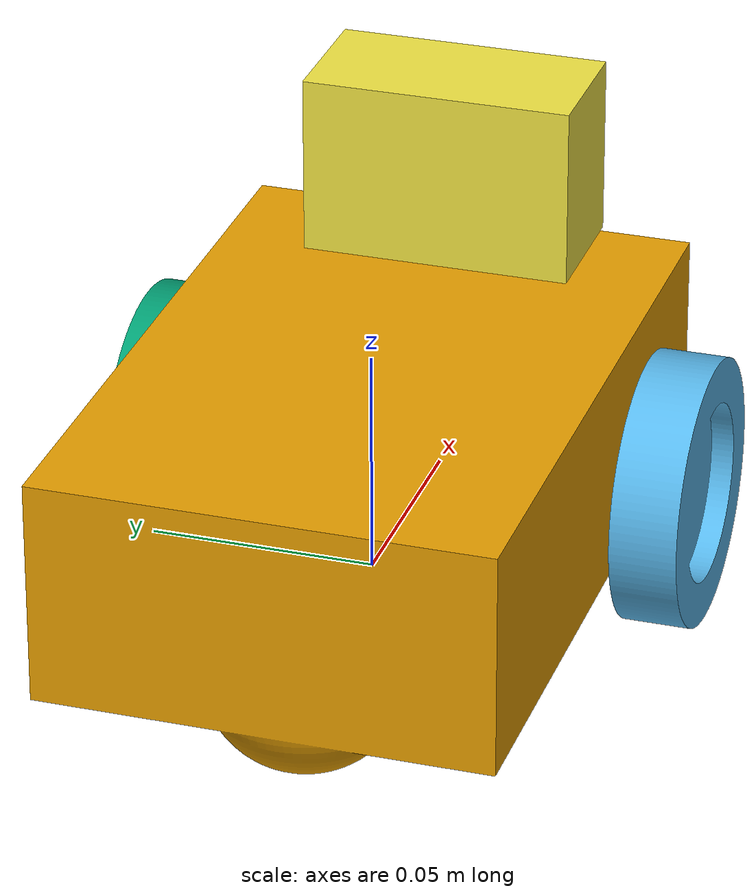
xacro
<?xml version="1.0"?>

<robot name="my_robot"  xmlns:xacro="http://ros.org/wiki/xacro">

  <!-- ### properties ### -->
  <xacro:property name="M_PI" value="3.14159" />

  <!-- base_link -->
  <link name="base_link">
    <visual>
      <origin xyz="0 0 0" rpy="0 0 0" />
      <geometry>
        <mesh filename="package://mkmk_description/meshes/base_link.stl" />
      </geometry>
    </visual>
    <collision>
      <origin xyz="0 0 0" rpy="0 0 0" />
      <geometry>
        <mesh filename="package://mkmk_description/meshes/base_link.stl" />
      </geometry>
    </collision>
    <inertial>
      <origin xyz="0 0 0" />
      <mass value="10.0" />
      <inertia ixx="1.0" ixy="0.0" ixz="0.0"
                         iyy="1.0" iyz="0.0"
                                   izz="1.0" />
    </inertial>
  </link>

  <gazebo reference="base_link">
    <mu1 value="0.1" />
    <mu2 value="0.1" />
    <kp  value="10000000.0" />
    <kd  value="1.0" />
    <fdir1 value="1 0 0" />
  </gazebo>

  <link name="right_wheel_link">
    <visual>
      <origin xyz="0 0 0" rpy="0 0 0" />
      <geometry>
        <mesh filename="package://mkmk_description/meshes/wheel_link.stl" />
      </geometry>
    </visual>
    <collision>
      <origin xyz="0 0 0" rpy="0 0 0" />
      <geometry>
        <mesh filename="package://mkmk_description/meshes/wheel_link.stl" />
      </geometry>
    </collision>
    <inertial>
      <origin xyz="0 0 0" />
      <mass value="0.01" />
      <inertia ixx="0.01" ixy="0.0" ixz="0.0"
                         iyy="0.01" iyz="0.0"
                                   izz="0.01" />
    </inertial>
  </link>

  <gazebo reference="right_wheel_link">
    <mu1 value="0.3" />
    <mu2 value="0.3" />
    <kp  value="10000000.0" />
    <kd  value="1.0" />
    <fdir1 value="1 0 0" />
  </gazebo>

  <link name="left_wheel_link">
    <visual>
      <origin xyz="0 0 0" rpy="0 0 0" />
      <geometry>
        <mesh filename="package://mkmk_description/meshes/wheel_link.stl" />
      </geometry>
    </visual>
    <collision>
      <origin xyz="0 0 0" rpy="0 0 0" />
      <geometry>
        <mesh filename="package://mkmk_description/meshes/wheel_link.stl" />
      </geometry>
    </collision>
    <inertial>
      <origin xyz="0 0 0" />
      <mass value="0.01" />
      <inertia ixx="0.01" ixy="0.0" ixz="0.0"
                         iyy="0.01" iyz="0.0"
                                   izz="0.01" />
    </inertial>
  </link>

  <gazebo reference="left_wheel_link">
    <mu1 value="0.3" />
    <mu2 value="0.3" />
    <kp  value="10000000.0" />
    <kd  value="1.0" />
    <fdir1 value="1 0 0" />
  </gazebo>

  <link name="camera_link">
    <visual>
      <origin xyz="0 0 0" rpy="0 0 0" />
      <geometry>
        <mesh filename="package://mkmk_description/meshes/camera_link.stl" />
      </geometry>
    </visual>
    <collision>
      <origin xyz="0 0 0" rpy="0 0 0" />
      <geometry>
        <mesh filename="package://mkmk_description/meshes/camera_link.stl" />
      </geometry>
    </collision>
  </link>

  <joint name="right_wheel_to_base" type="continuous">
    <parent link="base_link" />
    <child link="right_wheel_link" />
    <origin xyz="0.04 -0.05 0.0075" rpy="${M_PI/2} 0 0" />
    <axis xyz="0 0 -1" />
  </joint>

  <joint name="left_wheel_to_base" type="continuous">
    <parent link="base_link" />
    <child link="left_wheel_link" />
    <origin xyz="0.04 0.05 0.0075" rpy="${-M_PI/2} 0 0" />
    <axis xyz="0 0 1" />
  </joint>

  <joint name="camera_to_base" type="fixed">
    <parent link="base_link" />
    <child link="camera_link" />
    <origin xyz="0.075 0 0.071" rpy="${M_PI/2} 0 ${M_PI/2}" />
  </joint>

  <transmission name="right_wheel_trans" type="SimpleTransmission">
    <type>transmission_interface/SimpleTransmission</type>
    <actuator name="right_wheel_motor">
      <mechanicalReduction>1</mechanicalReduction>
    </actuator>
    <joint name="right_wheel_to_base">
      <hardwareInterface>hardware_interface/VelocityJointInterface</hardwareInterface>
    </joint>
  </transmission>

  <transmission name="left_wheel_trans" type="SimpleTransmission">
    <type>transmission_interface/SimpleTransmission</type>
    <actuator name="left_wheel_motor">
      <mechanicalReduction>1</mechanicalReduction>
    </actuator>
    <joint name="left_wheel_to_base">
      <hardwareInterface>hardware_interface/VelocityJointInterface</hardwareInterface>
    </joint>
  </transmission>

  <gazebo>
    <plugin name="gazebo_ros_control" filename="libgazebo_ros_control.so">
      <robotNamespace>/</robotNamespace>
    </plugin>
  </gazebo>

  <gazebo reference="camera_link">
    <sensor type="camera" name="camera_sensor">
      <update_rate>10.0</update_rate>
      <camera name="camera_sensor">
        <pose>0 0 0 ${-M_PI/2} ${-M_PI/2} 0</pose>
        <horizontal_fov>1.3962634</horizontal_fov>
        <image>
          <width>800</width>
          <height>600</height>
          <format>R8G8B8</format>
        </image>
        <clip>
          <near>0.02</near>
          <far>300</far>
        </clip>
        <noise>
          <type>gaussian</type>
          <mean>0.0</mean>
          <stddev>0.007</stddev>
        </noise>
      </camera>
      <plugin name="camera_controller" filename="libgazebo_ros_camera.so">
        <alwaysOn>true</alwaysOn>
        <updateRate>0.0</updateRate>
        <cameraName>camera_sensor</cameraName>
        <imageTopicName>image_raw</imageTopicName>
        <cameraInfoTopicName>camera_info</cameraInfoTopicName>
        <frameName>camera_link</frameName>
        <hackBaseline>0.0</hackBaseline>
        <distortionK1>0.0</distortionK1>
        <distortionK2>0.0</distortionK2>
        <distortionK3>0.0</distortionK3>
        <distortionT1>0.0</distortionT1>
        <distortionT2>0.0</distortionT2>
      </plugin>
    </sensor>
  </gazebo>

</robot>
